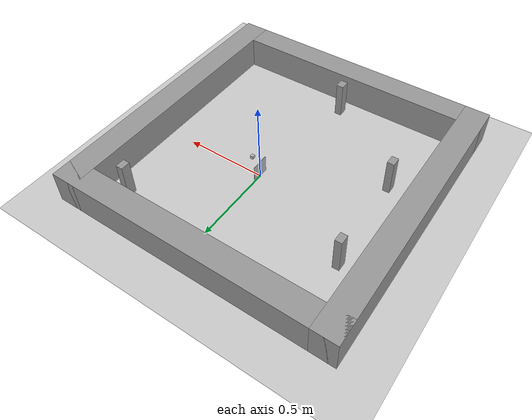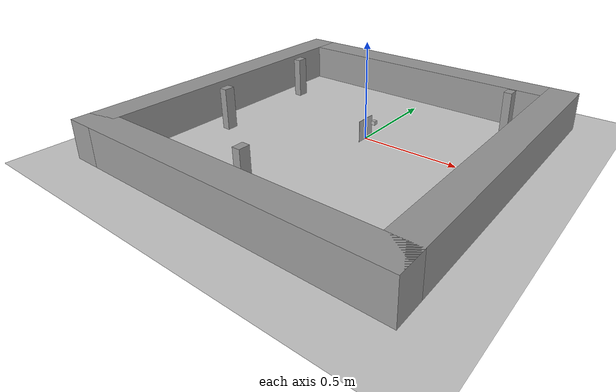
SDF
<sdf version="1.7">
 <world name="default">
  <include><uri>file:///home/monisha/simulation_ws/src/my_simulation/models/aruco_marker_1</uri></include>
  <light name="sun" type="directional">
   <pose>0 0 10 0 -0 0</pose>
   <diffuse>0.8 0.8 0.8 1</diffuse>
   <specular>0.2 0.2 0.2 1</specular>
   <attenuation>
    <range>1000</range>
    <constant>0.9</constant>
    <linear>0.01</linear>
    <quadratic>0.001</quadratic>
   </attenuation>
   <direction>-0.5 0.1 -0.9</direction>
   <spot><inner_angle>0</inner_angle><outer_angle>0</outer_angle><falloff>0</falloff></spot>
  </light>
  <model name="ground_plane">
   <static>1</static>
   <link name="link">
    <collision name="collision">
     <geometry><plane><normal>0 0 1</normal><size>100 100</size></plane></geometry>
     <surface>
      <contact><collide_bitmask>65535</collide_bitmask></contact>
      <friction><ode><mu>100</mu><mu2>50</mu2></ode></friction>
     </surface>
    </collision>
    <visual name="visual">
     <cast_shadows>0</cast_shadows>
     <geometry><plane><normal>0 0 1</normal><size>100 100</size></plane></geometry>
     <material>
      <script><uri>file://media/materials/scripts/gazebo.material</uri><name>Gazebo/Grey</name></script>
     </material>
    </visual>
   </link>
  </model>
  <gravity>0 0 -9.8</gravity>
  <magnetic_field>6e-06 2.3e-05 -4.2e-05</magnetic_field>
  <atmosphere type="adiabatic"/>
  <physics type="ode">
   <max_step_size>0.001</max_step_size>
   <real_time_factor>1</real_time_factor>
   <real_time_update_rate>1000</real_time_update_rate>
  </physics>
  <scene><ambient>0.4 0.4 0.4 1</ambient><background>0.7 0.7 0.7 1</background><shadows>1</shadows></scene>
  <audio><device>default</device></audio>
  <spherical_coordinates>
   <surface_model>EARTH_WGS84</surface_model>
   <latitude_deg>0</latitude_deg>
   <longitude_deg>0</longitude_deg>
   <elevation>0</elevation>
   <heading_deg>0</heading_deg>
  </spherical_coordinates>
  <model name="unit_box">
   <pose>-0.678559 0.280378 0.111108 -7.8e-05 3e-06 5.3e-05</pose>
   <link name="link">
    <inertial>
     <mass>1</mass>
     <inertia>
      <ixx>0.166667</ixx>
      <ixy>0</ixy>
      <ixz>0</ixz>
      <iyy>0.166667</iyy>
      <iyz>0</iyz>
      <izz>0.166667</izz>
     </inertia>
    </inertial>
    <collision name="collision">
     <geometry><box><size>0.041423 0.056653 0.222212</size></box></geometry>
    </collision>
    <visual name="visual">
     <geometry><box><size>0.041423 0.056653 0.222212</size></box></geometry>
     <material>
      <script><name>Gazebo/Grey</name><uri>file://media/materials/scripts/gazebo.material</uri></script>
     </material>
    </visual>
   </link>
  </model>
  <model name="unit_box_clone">
   <pose>-0.650399 -0.321031 0.111106 -1.9e-05 3e-06 5e-06</pose>
   <link name="link">
    <inertial>
     <mass>1</mass>
     <inertia>
      <ixx>0.166667</ixx>
      <ixy>0</ixy>
      <ixz>0</ixz>
      <iyy>0.166667</iyy>
      <iyz>0</iyz>
      <izz>0.166667</izz>
     </inertia>
    </inertial>
    <collision name="collision">
     <geometry><box><size>0.041423 0.056652 0.222212</size></box></geometry>
    </collision>
    <visual name="visual">
     <geometry><box><size>0.041423 0.056652 0.222212</size></box></geometry>
     <material>
      <script><name>Gazebo/Grey</name><uri>file://media/materials/scripts/gazebo.material</uri></script>
     </material>
    </visual>
   </link>
  </model>
  <model name="unit_box_clone_0">
   <pose>0.529698 0.508197 0.111107 1.1e-05 1.9e-05 -6.6e-05</pose>
   <link name="link">
    <inertial>
     <mass>1</mass>
     <inertia>
      <ixx>0.166667</ixx>
      <ixy>0</ixy>
      <ixz>0</ixz>
      <iyy>0.166667</iyy>
      <iyz>0</iyz>
      <izz>0.166667</izz>
     </inertia>
    </inertial>
    <collision name="collision">
     <geometry><box><size>0.041423 0.056652 0.222212</size></box></geometry>
    </collision>
    <visual name="visual">
     <geometry><box><size>0.041423 0.056652 0.222212</size></box></geometry>
     <material>
      <script><name>Gazebo/Grey</name><uri>file://media/materials/scripts/gazebo.material</uri></script>
     </material>
    </visual>
   </link>
  </model>
  <model name="unit_box_clone_1">
   <pose>-0.095657 -0.741595 0.111107 2.1e-05 3e-06 0.001427</pose>
   <link name="link">
    <inertial>
     <mass>1</mass>
     <inertia>
      <ixx>0.166667</ixx>
      <ixy>0</ixy>
      <ixz>0</ixz>
      <iyy>0.166667</iyy>
      <iyz>0</iyz>
      <izz>0.166667</izz>
     </inertia>
    </inertial>
    <collision name="collision">
     <geometry><box><size>0.041423 0.056652 0.222212</size></box></geometry>
    </collision>
    <visual name="visual">
     <geometry><box><size>0.041423 0.056652 0.222212</size></box></geometry>
     <material>
      <script><name>Gazebo/Grey</name><uri>file://media/materials/scripts/gazebo.material</uri></script>
     </material>
    </visual>
   </link>
  </model>
  <model name="arena_ttb3">
   <pose>0.596985 0.506606 0 0 -0 0</pose>
   <link name="Wall_10">
    <collision name="Wall_10_Collision">
     <geometry><box><size>1.75 0.15 0.2</size></box></geometry>
     <pose>0 0 0.1 0 -0 0</pose>
    </collision>
    <visual name="Wall_10_Visual">
     <pose>0 0 0.1 0 -0 0</pose>
     <geometry><box><size>1.75 0.15 0.2</size></box></geometry>
     <material>
      <script><uri>file://media/materials/scripts/gazebo.material</uri><name>Gazebo/Grey</name></script>
      <ambient>1 1 1 1</ambient>
     </material>
     <meta><layer>0</layer></meta>
    </visual>
    <pose>-0.6675 -1.4275 0 0 -0 3.14159</pose>
   </link>
   <link name="Wall_11">
    <collision name="Wall_11_Collision">
     <geometry><box><size>1.75 0.15 0.2</size></box></geometry>
     <pose>0 0 0.1 0 -0 0</pose>
    </collision>
    <visual name="Wall_11_Visual">
     <pose>0 0 0.1 0 -0 0</pose>
     <geometry><box><size>1.75 0.15 0.2</size></box></geometry>
     <material>
      <script><uri>file://media/materials/scripts/gazebo.material</uri><name>Gazebo/Grey</name></script>
      <ambient>1 1 1 1</ambient>
     </material>
     <meta><layer>0</layer></meta>
    </visual>
    <pose>-1.4675 -0.6275 0 0 -0 1.5708</pose>
   </link>
   <link name="Wall_8">
    <collision name="Wall_8_Collision">
     <geometry><box><size>1.75 0.15 0.2</size></box></geometry>
     <pose>0 0 0.1 0 -0 0</pose>
    </collision>
    <visual name="Wall_8_Visual">
     <pose>0 0 0.1 0 -0 0</pose>
     <geometry><box><size>1.75 0.15 0.2</size></box></geometry>
     <material>
      <script><uri>file://media/materials/scripts/gazebo.material</uri><name>Gazebo/Grey</name></script>
      <ambient>1 1 1 1</ambient>
     </material>
     <meta><layer>0</layer></meta>
    </visual>
    <pose>-0.6675 0.1725 0 0 -0 0</pose>
   </link>
   <link name="Wall_9">
    <collision name="Wall_9_Collision">
     <geometry><box><size>1.75 0.15 0.2</size></box></geometry>
     <pose>0 0 0.1 0 -0 0</pose>
    </collision>
    <visual name="Wall_9_Visual">
     <pose>0 0 0.1 0 -0 0</pose>
     <geometry><box><size>1.75 0.15 0.2</size></box></geometry>
     <material>
      <script><uri>file://media/materials/scripts/gazebo.material</uri><name>Gazebo/Grey</name></script>
      <ambient>1 1 1 1</ambient>
     </material>
     <meta><layer>0</layer></meta>
    </visual>
    <pose>0.1325 -0.6275 0 0 -0 -1.5708</pose>
   </link>
   <static>1</static>
  </model>
  <plugin name="gazebo_ros_init" filename="libgazebo_ros_init.so">
   <ros><namespace>/</namespace><argument>--ros-args</argument></ros>
  </plugin>
  <plugin name="gazebo_ros_factory" filename="libgazebo_ros_factory.so"/>
  <plugin name="gazebo_ros_api_plugin" filename="libgazebo_ros_api_plugin.so"/>
  <plugin name="gazebo_ros_state" filename="libgazebo_ros_state.so"/>
  <model name="camera">
   <pose>0.060329 -0.01453 0.108914 -1e-06 0.005735 -0.00022</pose>
   <static>0</static>
   <link name="link">
    <inertial>
     <mass>0.1</mass>
     <inertia>
      <ixx>0.000166667</ixx>
      <iyy>0.000166667</iyy>
      <izz>0.000166667</izz>
      <ixy>0</ixy>
      <ixz>0</ixz>
      <iyz>0</iyz>
     </inertia>
    </inertial>
    <collision name="collision"><geometry><box><size>0.02 0.02 0.02</size></box></geometry></collision>
    <visual name="visual"><geometry><box><size>0.02 0.02 0.02</size></box></geometry></visual>
    <sensor name="camera" type="camera">
     <camera>
      <horizontal_fov>1.047</horizontal_fov>
      <image><width>320</width><height>240</height></image>
      <clip><near>0.1</near><far>100</far></clip>
     </camera>
     <plugin name="camera_controller" filename="libgazebo_ros_camera.so">
      <ros>
       <namespace>/my_camera</namespace>
       <remapping>image_raw:=/camera/image_raw</remapping>
       <remapping>camera_info:=/camera/camera_info</remapping>
      </ros>
     </plugin>
     <always_on>1</always_on>
     <update_rate>30</update_rate>
     <visualize>1</visualize>
    </sensor>
   </link>
  </model>
 </world>
</sdf>

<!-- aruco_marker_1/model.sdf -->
<sdf version="1.6">
  <model name="aruco_marker_1">
    <static>true</static>
    <link name="link">
      <visual name="visual">
        <geometry>
          <mesh>
            <uri>model://aruco_marker_1/meshes/aruco_marker_1.dae</uri>
          <scale>0.22 0.22 0.22</scale></mesh>
        </geometry>
      </visual>
    </link>
  </model>
</sdf>
